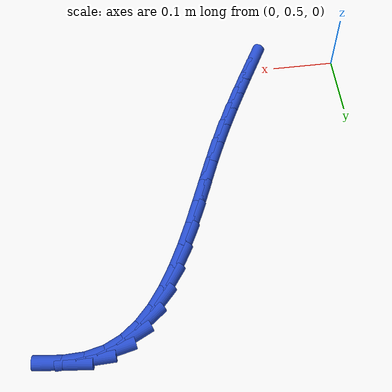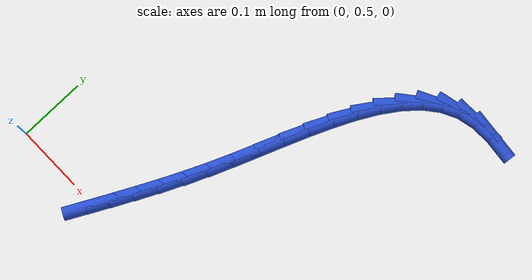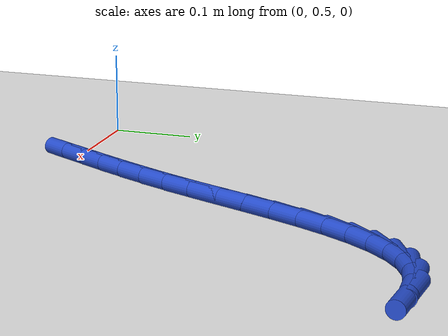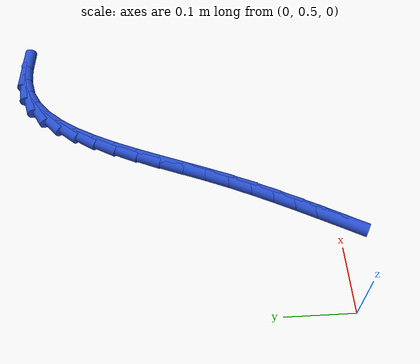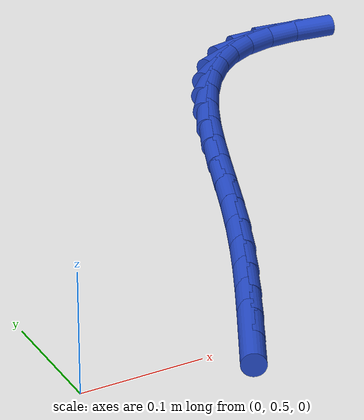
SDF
<sdf version="1.6">
 <world name="default">
  <model name="ground_plane">
   <static>1</static>
   <link name="link">
    <collision name="collision">
     <geometry><plane><normal>0 0 1</normal><size>100 100</size></plane></geometry>
     <surface><friction><ode><mu>100</mu><mu2>50</mu2></ode></friction></surface>
    </collision>
    <visual name="visual">
     <cast_shadows>0</cast_shadows>
     <geometry><plane><normal>0 0 1</normal><size>100 100</size></plane></geometry>
     <material>
      <script><uri>file://media/materials/scripts/gazebo.material</uri><name>Gazebo/WhiteGlow</name></script>
     </material>
    </visual>
   </link>
  </model>
  <model name="line">
   <link name="link_16">
    <pose>0.13923248353419473 0.495546065682289 0.01 0 1.57 1.0868979768102938</pose>
    <collision name="collision">
     <geometry><cylinder><radius>0.01</radius><length>0.08</length></cylinder></geometry>
    </collision>
    <visual name="visual">
     <material>
      <script><name>Gazebo/Blue</name><uri>file://media/materials/scripts/gazebo.material</uri></script>
     </material>
     <geometry><cylinder><radius>0.01</radius><length>0.08</length></cylinder></geometry>
    </visual>
   </link>
   <link name="link_17">
    <pose>0.1547086296202096 0.5249921389221651 0.01 0 1.57 1.0933442014532393</pose>
    <collision name="collision">
     <geometry><cylinder><radius>0.01</radius><length>0.08</length></cylinder></geometry>
    </collision>
    <visual name="visual">
     <material>
      <script><name>Gazebo/Blue</name><uri>file://media/materials/scripts/gazebo.material</uri></script>
     </material>
     <geometry><cylinder><radius>0.01</radius><length>0.08</length></cylinder></geometry>
    </visual>
   </link>
   <link name="link_18">
    <pose>0.17026739231080001 0.5550645466338653 0.01 0 1.57 1.1052810080170552</pose>
    <collision name="collision">
     <geometry><cylinder><radius>0.01</radius><length>0.08</length></cylinder></geometry>
    </collision>
    <visual name="visual">
     <material>
      <script><name>Gazebo/Blue</name><uri>file://media/materials/scripts/gazebo.material</uri></script>
     </material>
     <geometry><cylinder><radius>0.01</radius><length>0.08</length></cylinder></geometry>
    </visual>
   </link>
   <link name="link_19">
    <pose>0.1857705287473183 0.5859265813317983 0.01 0 1.57 1.1223037779074598</pose>
    <collision name="collision">
     <geometry><cylinder><radius>0.01</radius><length>0.08</length></cylinder></geometry>
    </collision>
    <visual name="visual">
     <material>
      <script><name>Gazebo/Blue</name><uri>file://media/materials/scripts/gazebo.material</uri></script>
     </material>
     <geometry><cylinder><radius>0.01</radius><length>0.08</length></cylinder></geometry>
    </visual>
   </link>
   <link name="link_20">
    <pose>0.20107979607111703 0.6177415355303737 0.01 0 1.57 1.1439563611687862</pose>
    <collision name="collision">
     <geometry><cylinder><radius>0.01</radius><length>0.08</length></cylinder></geometry>
    </collision>
    <visual name="visual">
     <material>
      <script><name>Gazebo/Blue</name><uri>file://media/materials/scripts/gazebo.material</uri></script>
     </material>
     <geometry><cylinder><radius>0.01</radius><length>0.08</length></cylinder></geometry>
    </visual>
   </link>
   <link name="link_21">
    <pose>0.21605695142354844 0.6506727017440003 0.01 0 1.57 1.169486346922027</pose>
    <collision name="collision">
     <geometry><cylinder><radius>0.01</radius><length>0.08</length></cylinder></geometry>
    </collision>
    <visual name="visual">
     <material>
      <script><name>Gazebo/Blue</name><uri>file://media/materials/scripts/gazebo.material</uri></script>
     </material>
     <geometry><cylinder><radius>0.01</radius><length>0.08</length></cylinder></geometry>
    </visual>
   </link>
   <link name="link_22">
    <pose>0.2305692575888098 0.6848725581302799 0.01 0 1.57 1.1900381478327313</pose>
    <collision name="collision">
     <geometry><cylinder><radius>0.01</radius><length>0.08</length></cylinder></geometry>
    </collision>
    <visual name="visual">
     <material>
      <script><name>Gazebo/Blue</name><uri>file://media/materials/scripts/gazebo.material</uri></script>
     </material>
     <geometry><cylinder><radius>0.01</radius><length>0.08</length></cylinder></geometry>
    </visual>
   </link>
   <link name="link_23">
    <pose>0.24467661139991284 0.72011520499053 0.01 0 1.57 1.1960094326079989</pose>
    <collision name="collision">
     <geometry><cylinder><radius>0.01</radius><length>0.08</length></cylinder></geometry>
    </collision>
    <visual name="visual">
     <material>
      <script><name>Gazebo/Blue</name><uri>file://media/materials/scripts/gazebo.material</uri></script>
     </material>
     <geometry><cylinder><radius>0.01</radius><length>0.08</length></cylinder></geometry>
    </visual>
   </link>
   <link name="link_24">
    <pose>0.2586774283061442 0.7557062368594836 0.01 0 1.57 1.1873279173007258</pose>
    <collision name="collision">
     <geometry><cylinder><radius>0.01</radius><length>0.08</length></cylinder></geometry>
    </collision>
    <visual name="visual">
     <material>
      <script><name>Gazebo/Blue</name><uri>file://media/materials/scripts/gazebo.material</uri></script>
     </material>
     <geometry><cylinder><radius>0.01</radius><length>0.08</length></cylinder></geometry>
    </visual>
   </link>
   <link name="link_25">
    <pose>0.27288493783246437 0.7909221499985897 0.01 0 1.57 1.1632892073238223</pose>
    <collision name="collision">
     <geometry><cylinder><radius>0.01</radius><length>0.08</length></cylinder></geometry>
    </collision>
    <visual name="visual">
     <material>
      <script><name>Gazebo/Blue</name><uri>file://media/materials/scripts/gazebo.material</uri></script>
     </material>
     <geometry><cylinder><radius>0.01</radius><length>0.08</length></cylinder></geometry>
    </visual>
   </link>
   <link name="link_26">
    <pose>0.28761236950383434 0.8250394406692969 0.01 0 1.57 1.1217950118944597</pose>
    <collision name="collision">
     <geometry><cylinder><radius>0.01</radius><length>0.08</length></cylinder></geometry>
    </collision>
    <visual name="visual">
     <material>
      <script><name>Gazebo/Blue</name><uri>file://media/materials/scripts/gazebo.material</uri></script>
     </material>
     <geometry><cylinder><radius>0.01</radius><length>0.08</length></cylinder></geometry>
    </visual>
   </link>
   <link name="link_27">
    <pose>0.30317295284521445 0.8573346051330537 0.01 0 1.57 1.059100367536076</pose>
    <collision name="collision">
     <geometry><cylinder><radius>0.01</radius><length>0.08</length></cylinder></geometry>
    </collision>
    <visual name="visual">
     <material>
      <script><name>Gazebo/Blue</name><uri>file://media/materials/scripts/gazebo.material</uri></script>
     </material>
     <geometry><cylinder><radius>0.01</radius><length>0.08</length></cylinder></geometry>
    </visual>
   </link>
   <link name="link_28">
    <pose>0.31987991738156546 0.8870841396513087 0.01 0 1.57 0.9695020620723478</pose>
    <collision name="collision">
     <geometry><cylinder><radius>0.01</radius><length>0.08</length></cylinder></geometry>
    </collision>
    <visual name="visual">
     <material>
      <script><name>Gazebo/Blue</name><uri>file://media/materials/scripts/gazebo.material</uri></script>
     </material>
     <geometry><cylinder><radius>0.01</radius><length>0.08</length></cylinder></geometry>
    </visual>
   </link>
   <link name="link_29">
    <pose>0.33804649263784775 0.9135645404855103 0.01 0 1.57 0.8453901318244618</pose>
    <collision name="collision">
     <geometry><cylinder><radius>0.01</radius><length>0.08</length></cylinder></geometry>
    </collision>
    <visual name="visual">
     <material>
      <script><name>Gazebo/Blue</name><uri>file://media/materials/scripts/gazebo.material</uri></script>
     </material>
     <geometry><cylinder><radius>0.01</radius><length>0.08</length></cylinder></geometry>
    </visual>
   </link>
   <link name="link_30">
    <pose>0.35798590813902226 0.9360523038971075 0.01 0 1.57 0.678913722099576</pose>
    <collision name="collision">
     <geometry><cylinder><radius>0.01</radius><length>0.08</length></cylinder></geometry>
    </collision>
    <visual name="visual">
     <material>
      <script><name>Gazebo/Blue</name><uri>file://media/materials/scripts/gazebo.material</uri></script>
     </material>
     <geometry><cylinder><radius>0.01</radius><length>0.08</length></cylinder></geometry>
    </visual>
   </link>
   <link name="link_31">
    <pose>0.3800113934100494 0.9538239261475485 0.01 0 1.57 0.4675567765697216</pose>
    <collision name="collision">
     <geometry><cylinder><radius>0.01</radius><length>0.08</length></cylinder></geometry>
    </collision>
    <visual name="visual">
     <material>
      <script><name>Gazebo/Blue</name><uri>file://media/materials/scripts/gazebo.material</uri></script>
     </material>
     <geometry><cylinder><radius>0.01</radius><length>0.08</length></cylinder></geometry>
    </visual>
   </link>
   <link name="link_32">
    <pose>0.40443617797589004 0.9661559034982821 0.01 0 1.57 0.23184507173724725</pose>
    <collision name="collision">
     <geometry><cylinder><radius>0.01</radius><length>0.08</length></cylinder></geometry>
    </collision>
    <visual name="visual">
     <material>
      <script><name>Gazebo/Blue</name><uri>file://media/materials/scripts/gazebo.material</uri></script>
     </material>
     <geometry><cylinder><radius>0.01</radius><length>0.08</length></cylinder></geometry>
    </visual>
   </link>
   <link name="link_33">
    <pose>0.43148621310586693 0.9725421579244949 0.01 0 1.57 0.03751136515576781</pose>
    <collision name="collision">
     <geometry><cylinder><radius>0.01</radius><length>0.08</length></cylinder></geometry>
    </collision>
    <visual name="visual">
     <material>
      <script><name>Gazebo/Blue</name><uri>file://media/materials/scripts/gazebo.material</uri></script>
     </material>
     <geometry><cylinder><radius>0.01</radius><length>0.08</length></cylinder></geometry>
    </visual>
   </link>
   <link name="link_34">
    <pose>0.46091775986625194 0.9736466935356731 0.01 0 1.57 -0.09904123851204222</pose>
    <collision name="collision">
     <geometry><cylinder><radius>0.01</radius><length>0.08</length></cylinder></geometry>
    </collision>
    <visual name="visual">
     <material>
      <script><name>Gazebo/Blue</name><uri>file://media/materials/scripts/gazebo.material</uri></script>
     </material>
     <geometry><cylinder><radius>0.01</radius><length>0.08</length></cylinder></geometry>
    </visual>
   </link>
  </model>
 </world>
</sdf>
